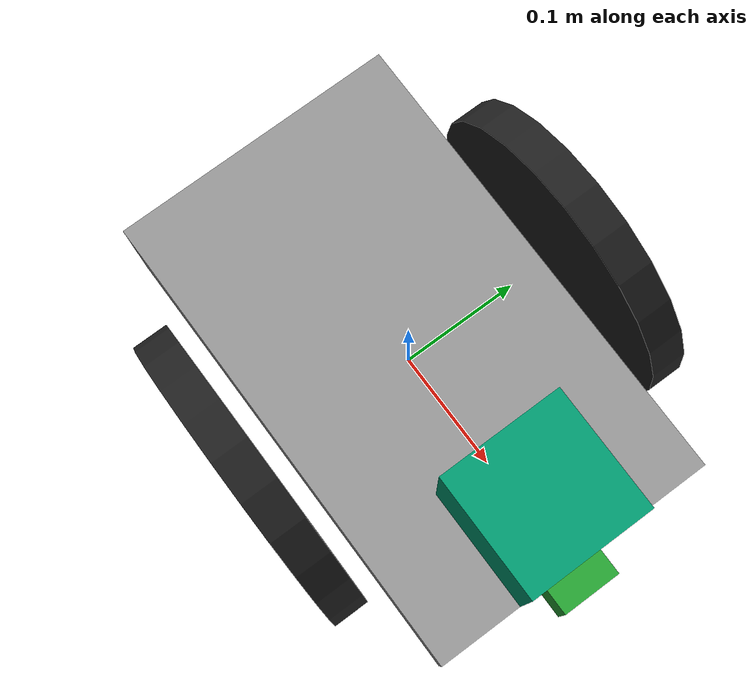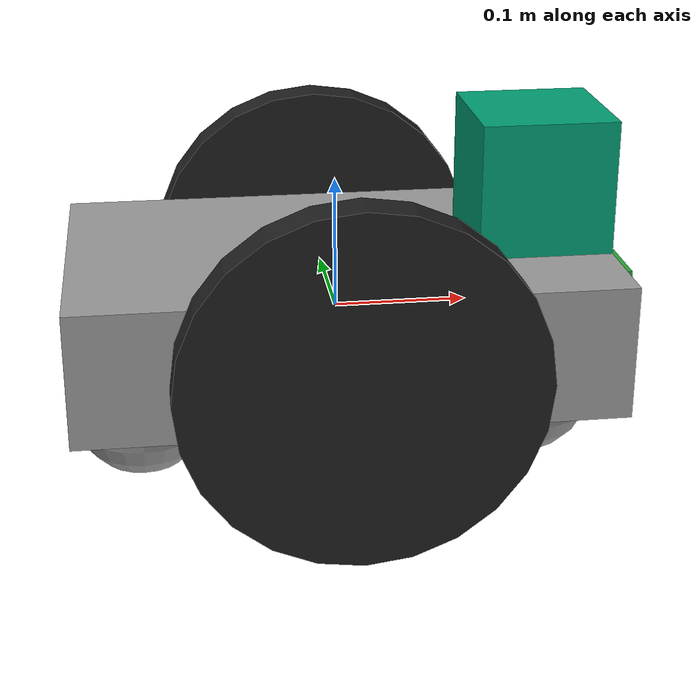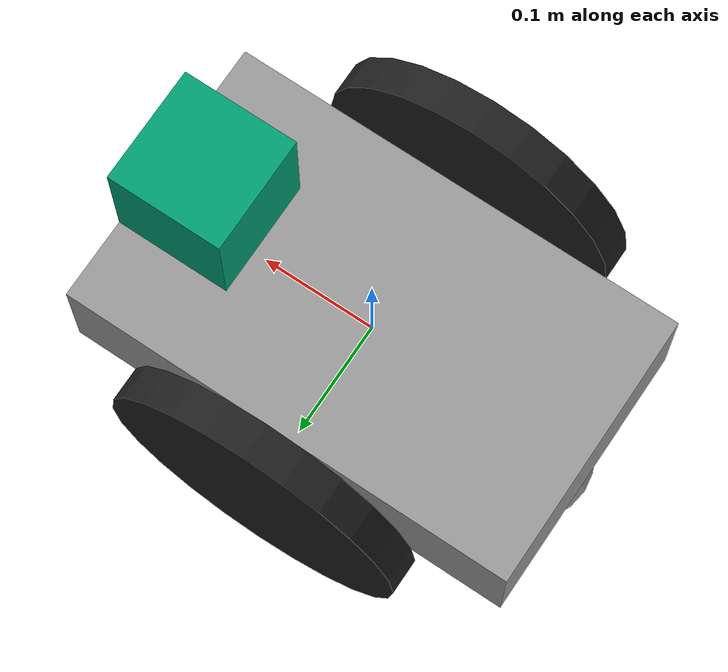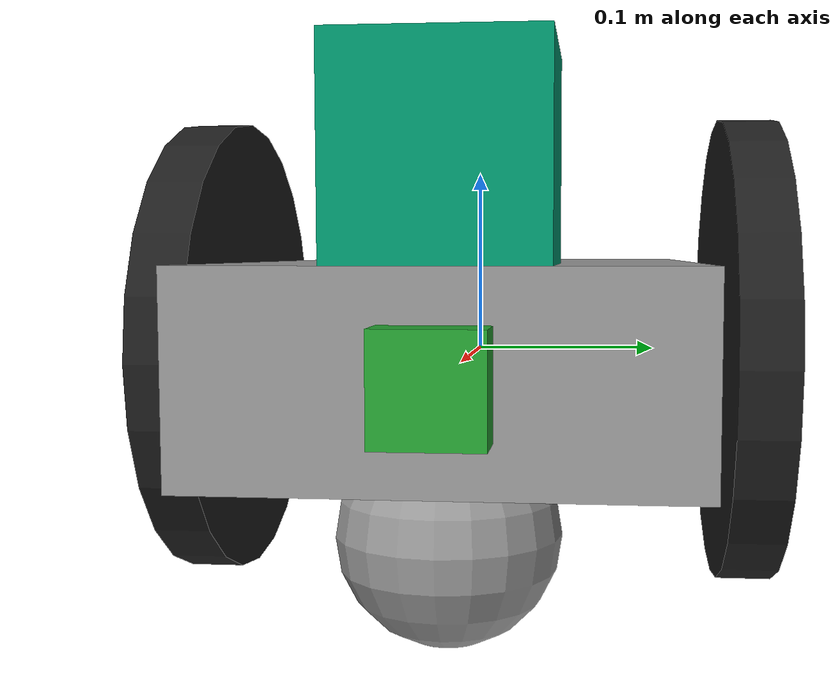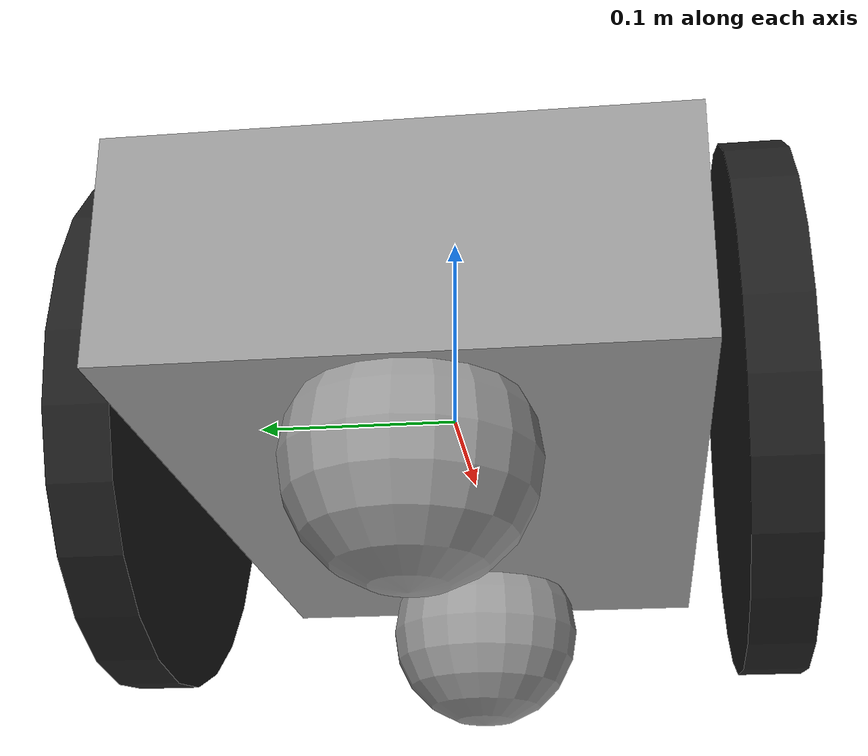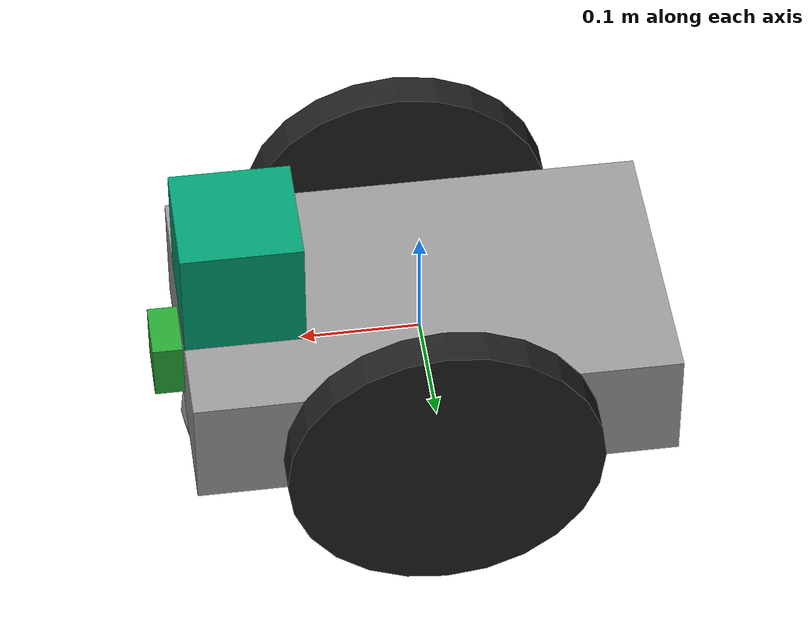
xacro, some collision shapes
<?xml version='1.0'?>

<robot name="my_robot" xmlns:xacro="http://www.ros.org/wiki/xacro">
  <gazebo reference="left_wheel">
      <material>Gazebo/Black</material>
  </gazebo>
  <gazebo reference="right_wheel">
      <material>Gazebo/Black</material>
  </gazebo>
  <gazebo reference="chassis">
      <material>Gazebo/Grey</material>
  </gazebo>
  <gazebo reference="camera">
      <material>Gazebo/Green</material>
  </gazebo>

  <xacro:include filename="$(find my_robot)/urdf/my_robot.gazebo" />
  <link name="robot_footprint"></link>

  <joint name="robot_footprint_joint" type="fixed">
    <origin xyz="0 0 0" rpy="0 0 0" />
    <parent link="robot_footprint"/>
    <child link="chassis" />
  </joint>

  <joint type="continuous" name="left_wheel_hinge">
    <origin xyz="0 0.15 0" rpy="0 0 0"/>
    <child link="left_wheel"/>
    <parent link="chassis"/>
    <axis xyz="0 1 0" rpy="0 0 0"/>
    <limit effort="10000" velocity="1000"/>
    <dynamics damping="1.0" friction="1.0"/>
  </joint>

  <joint type="continuous" name="right_wheel_hinge">
    <origin xyz="0 -0.15 0" rpy="0 0 0"/>
    <child link="right_wheel"/>
    <parent link="chassis"/>
    <axis xyz="0 1 0" rpy="0 0 0"/>
    <limit effort="10000" velocity="1000"/>
    <dynamics damping="1.0" friction="1.0"/>
  </joint>

  <joint type="fixed" name="camera_joint">
    <axis xyz="0 1 0" />
    <origin xyz="0.2 0 0" rpy="0 0 0" />
    <parent link="chassis" />
    <child link="camera" />
  </joint>

  <joint type='fixed' name='hokuyo_joint'>
    <axis xyz='0 1 0' />
    <origin xyz='0.15 0 0.1' rpy='0 0 0' />
    <parent link="chassis" />
    <child link="hokuyo" />
  </joint>

  <joint name="camera_optical_joint" type="fixed">
    <origin xyz="0 0 0" rpy="-1.5707 0 -1.5707"/>
    <parent link="camera"/>
    <child link="camera_link_optical"/>
  </joint>

  <link name="camera_link_optical">
  </link>

  <link name='hokuyo'>
    <inertial>
      <mass value="1e-05"/>
      <origin xyz="0.0 0 0" rpy=" 0 0 0"/>
      <inertia
          ixx="1e-06" ixy="0" ixz="0"
          iyy="1e-06" iyz="0"
          izz="1e-06"
      />
    </inertial>
    <visual name='hokyo_visual'>
      <origin xyz="0 0 0" rpy=" 0 0 0"/>
      <geometry>
        <mesh filename='package://my_robot/meshes/hokuyo.dae'/>
      </geometry>
    </visual>
    <collision name='hokyo_collision'>
      <origin xyz="0 0 0" rpy=" 0 0 0"/>
      <geometry>
        <box size="0.1 0.1 0.1"/>
      </geometry>
    </collision>
  </link>

  <link name='camera'>
    <inertia>
      <mass value="0.1"/>
      <origin xyz="0.0 0 0" rpy=" 0 0 0"/>
      <inertia
          ixx="1e-06" ixy="0" ixz="0"
          iyy="1e-06" iyz="0"
          izz="1e-06"
      />
    </inertia>
    <visual name='camera_visual'>
      <origin xyz="0 0 0" rpy=" 0 0 0"/>
      <geometry>
        <box size="0.05 0.05 0.05"/>
      </geometry>
    </visual>
    <collision name='camera_collision'>
      <origin xyz="0 0 0" rpy=" 0 0 0"/>
      <geometry>
        <box size="0.05 0.05 0.05"/>
      </geometry>
    </collision>
  </link>

  <link name='left_wheel'>
    <pose>0 0 0.1 0 0 0</pose>

    <inertial>
      <mass value="5.0"/>
      <origin xyz="0.0 0 0" rpy=" 0 1.5707 1.5707"/>
      <inertia
          ixx="0.1" ixy="0" ixz="0"
          iyy="0.1" iyz="0"
          izz="0.1"
      />
    </inertial>

    <collision name='left_wheel_collision'>
      <origin xyz="0.0 0 0" rpy=" 0 1.5707 1.5707"/>
      <geometry>
        <cylinder radius="0.13" length="0.03"/>
      </geometry>
    </collision>

    <visual name='left_wheel_visual'>
      <origin xyz="0.0 0 0" rpy=" 0 1.5707 1.5707"/>
      <geometry>
        <cylinder radius="0.13" length="0.03"/>
      </geometry>
    </visual>

  </link>

  <link name='right_wheel'>
    <pose>0 0 0.1 0 0 0</pose>

    <inertial>
      <mass value="5.0"/>
      <origin xyz="0.0 0 0" rpy=" 0 1.5707 1.5707"/>
      <inertia
          ixx="0.1" ixy="0" ixz="0"
          iyy="0.1" iyz="0"
          izz="0.1"
      />
    </inertial>

    <collision name='right_wheel_collision'>
      <origin xyz="0.0 0 0" rpy=" 0 1.5707 1.5707"/>
      <geometry>
        <cylinder radius="0.13" length="0.03"/>
      </geometry>
    </collision>

    <visual name='right_wheel_visual'>
      <origin xyz="0.0 0 0" rpy=" 0 1.5707 1.5707"/>
      <geometry>
        <cylinder radius="0.13" length="0.03"/>
      </geometry>
    </visual>

  </link>
  <link name='chassis'>
    <pose>0 0 0.1 0 0 0</pose>

    <inertial>
      <mass value="15.0"/>
      <origin xyz="0.0 0 0" rpy=" 0 0 0"/>
      <inertia
          ixx="0.1" ixy="0" ixz="0"
          iyy="0.1" iyz="0"
          izz="0.1"
      />
    </inertial>

    <collision name='collision'>
      <origin xyz="0 0 0" rpy=" 0 0 0"/>
      <geometry>
        <box size=".4 .24 .1"/>
      </geometry>
    </collision>

    <visual name='chassis_visual'>
      <origin xyz="0 0 0" rpy=" 0 0 0"/>
      <geometry>
        <box size=".4 .24 .1"/>
      </geometry>
    </visual>

    <collision name='back_caster_collision'>
      <origin xyz="-0.15 0 -0.075" rpy=" 0 0 0"/>
      <geometry>
        <sphere radius="0.0529"/>
      </geometry>
    </collision>

    <visual name='back_caster_visual'>
      <origin xyz="-0.15 0 -0.075" rpy=" 0 0 0"/>
      <geometry>
        <sphere radius="0.053"/>
      </geometry>
    </visual>

    <collision name='front_caster_collision'>
      <origin xyz="0.15 0 -0.075" rpy=" 0 0 0"/>
      <geometry>
        <sphere radius="0.0529"/>
      </geometry>
    </collision>

    <visual name='front_caster_visual'>
      <origin xyz="0.15 0 -0.075" rpy=" 0 0 0"/>
      <geometry>
        <sphere radius="0.053"/>
      </geometry>
    </visual>

  </link>

</robot>
